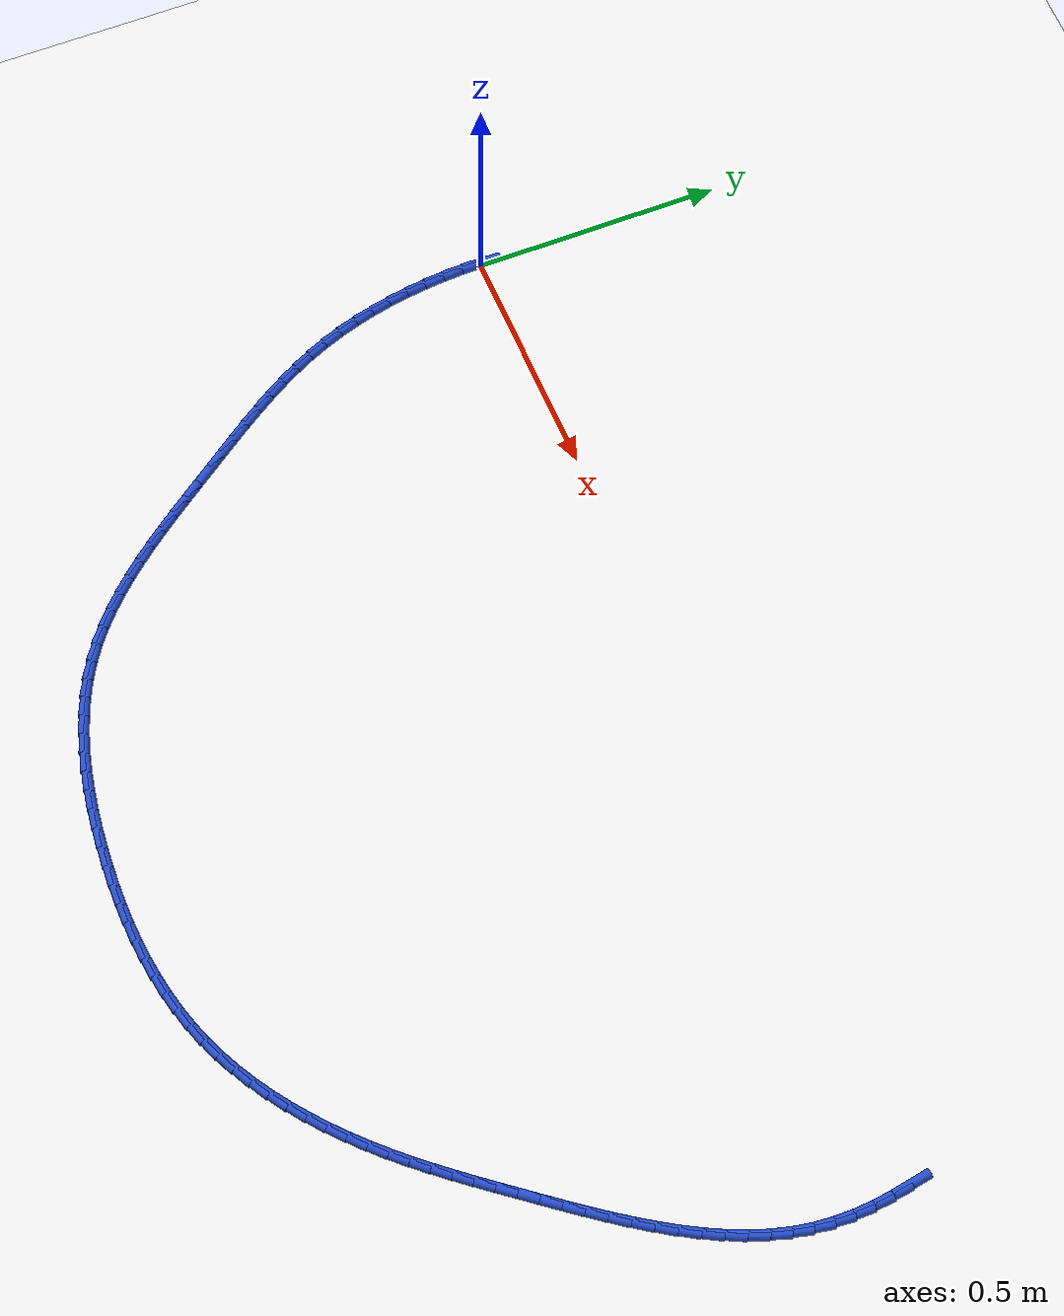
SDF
<sdf version="1.6">
 <world name="default">
  <model name="ground_plane">
   <static>1</static>
   <link name="link">
    <collision name="collision">
     <geometry><plane><normal>0 0 1</normal><size>100 100</size></plane></geometry>
     <surface><friction><ode><mu>100</mu><mu2>50</mu2></ode></friction></surface>
    </collision>
    <visual name="visual">
     <cast_shadows>0</cast_shadows>
     <geometry><plane><normal>0 0 1</normal><size>100 100</size></plane></geometry>
     <material>
      <script><uri>file://media/materials/scripts/gazebo.material</uri><name>Gazebo/WhiteGlow</name></script>
     </material>
    </visual>
   </link>
  </model>
  <model name="line">
   <link name="link_0">
    <pose>3.469446951953614e-18 0.0 0.01 0 1.57 1.557081055174507</pose>
    <collision name="collision">
     <geometry><cylinder><radius>0.01</radius><length>0.08</length></cylinder></geometry>
    </collision>
    <visual name="visual">
     <material>
      <script><name>Gazebo/Blue</name><uri>file://media/materials/scripts/gazebo.material</uri></script>
     </material>
     <geometry><cylinder><radius>0.01</radius><length>0.08</length></cylinder></geometry>
    </visual>
   </link>
   <link name="link_85">
    <pose>2.1668256963083787 -0.03859959468812169 0.01 0 1.57 -1.375232970775576</pose>
    <collision name="collision">
     <geometry><cylinder><radius>0.01</radius><length>0.08</length></cylinder></geometry>
    </collision>
    <visual name="visual">
     <material>
      <script><name>Gazebo/Blue</name><uri>file://media/materials/scripts/gazebo.material</uri></script>
     </material>
     <geometry><cylinder><radius>0.01</radius><length>0.08</length></cylinder></geometry>
    </visual>
   </link>
   <link name="link_86">
    <pose>2.1747470799791855 -0.07858735570234868 0.01 0 1.57 -1.433113222860227</pose>
    <collision name="collision">
     <geometry><cylinder><radius>0.01</radius><length>0.08</length></cylinder></geometry>
    </collision>
    <visual name="visual">
     <material>
      <script><name>Gazebo/Blue</name><uri>file://media/materials/scripts/gazebo.material</uri></script>
     </material>
     <geometry><cylinder><radius>0.01</radius><length>0.08</length></cylinder></geometry>
    </visual>
   </link>
   <link name="link_87">
    <pose>2.1802638411460196 -0.11840238840496489 0.01 0 1.57 -1.4990910510602626</pose>
    <collision name="collision">
     <geometry><cylinder><radius>0.01</radius><length>0.08</length></cylinder></geometry>
    </collision>
    <visual name="visual">
     <material>
      <script><name>Gazebo/Blue</name><uri>file://media/materials/scripts/gazebo.material</uri></script>
     </material>
     <geometry><cylinder><radius>0.01</radius><length>0.08</length></cylinder></geometry>
    </visual>
   </link>
   <link name="link_88">
    <pose>2.1831056390242765 -0.15796608399235024 0.01 0 1.57 1.5681581401401632</pose>
    <collision name="collision">
     <geometry><cylinder><radius>0.01</radius><length>0.08</length></cylinder></geometry>
    </collision>
    <visual name="visual">
     <material>
      <script><name>Gazebo/Blue</name><uri>file://media/materials/scripts/gazebo.material</uri></script>
     </material>
     <geometry><cylinder><radius>0.01</radius><length>0.08</length></cylinder></geometry>
    </visual>
   </link>
   <link name="link_89">
    <pose>2.1830021328293503 -0.197199833660885 0.01 0 1.57 1.485514067327752</pose>
    <collision name="collision">
     <geometry><cylinder><radius>0.01</radius><length>0.08</length></cylinder></geometry>
    </collision>
    <visual name="visual">
     <material>
      <script><name>Gazebo/Blue</name><uri>file://media/materials/scripts/gazebo.material</uri></script>
     </material>
     <geometry><cylinder><radius>0.01</radius><length>0.08</length></cylinder></geometry>
    </visual>
   </link>
   <link name="link_90">
    <pose>2.179682981776634 -0.23602502860694746 0.01 0 1.57 1.3962677368109608</pose>
    <collision name="collision">
     <geometry><cylinder><radius>0.01</radius><length>0.08</length></cylinder></geometry>
    </collision>
    <visual name="visual">
     <material>
      <script><name>Gazebo/Blue</name><uri>file://media/materials/scripts/gazebo.material</uri></script>
     </material>
     <geometry><cylinder><radius>0.01</radius><length>0.08</length></cylinder></geometry>
    </visual>
   </link>
   <link name="link_91">
    <pose>2.1729219801116586 -0.27436954648941725 0.01 0 1.57 1.3107190084362488</pose>
    <collision name="collision">
     <geometry><cylinder><radius>0.01</radius><length>0.08</length></cylinder></geometry>
    </collision>
    <visual name="visual">
     <material>
      <script><name>Gazebo/Blue</name><uri>file://media/materials/scripts/gazebo.material</uri></script>
     </material>
     <geometry><cylinder><radius>0.01</radius><length>0.08</length></cylinder></geometry>
    </visual>
   </link>
   <link name="link_92">
    <pose>2.1628514195876662 -0.3122139528351244 0.01 0 1.57 1.234099878756024</pose>
    <collision name="collision">
     <geometry><cylinder><radius>0.01</radius><length>0.08</length></cylinder></geometry>
    </collision>
    <visual name="visual">
     <material>
      <script><name>Gazebo/Blue</name><uri>file://media/materials/scripts/gazebo.material</uri></script>
     </material>
     <geometry><cylinder><radius>0.01</radius><length>0.08</length></cylinder></geometry>
    </visual>
   </link>
   <link name="link_93">
    <pose>2.1497778481005487 -0.34956442334791776 0.01 0 1.57 1.1665808563955318</pose>
    <collision name="collision">
     <geometry><cylinder><radius>0.01</radius><length>0.08</length></cylinder></geometry>
    </collision>
    <visual name="visual">
     <material>
      <script><name>Gazebo/Blue</name><uri>file://media/materials/scripts/gazebo.material</uri></script>
     </material>
     <geometry><cylinder><radius>0.01</radius><length>0.08</length></cylinder></geometry>
    </visual>
   </link>
   <link name="link_94">
    <pose>2.1340089722286724 -0.3864273040215603 0.01 0 1.57 1.1079042132795962</pose>
    <collision name="collision">
     <geometry><cylinder><radius>0.01</radius><length>0.08</length></cylinder></geometry>
    </collision>
    <visual name="visual">
     <material>
      <script><name>Gazebo/Blue</name><uri>file://media/materials/scripts/gazebo.material</uri></script>
     </material>
     <geometry><cylinder><radius>0.01</radius><length>0.08</length></cylinder></geometry>
    </visual>
   </link>
   <link name="link_95">
    <pose>2.115852498550408 -0.42280894084981263 0.01 0 1.57 1.0575858795050967</pose>
    <collision name="collision">
     <geometry><cylinder><radius>0.01</radius><length>0.08</length></cylinder></geometry>
    </collision>
    <visual name="visual">
     <material>
      <script><name>Gazebo/Blue</name><uri>file://media/materials/scripts/gazebo.material</uri></script>
     </material>
     <geometry><cylinder><radius>0.01</radius><length>0.08</length></cylinder></geometry>
    </visual>
   </link>
   <link name="link_96">
    <pose>2.0956161336441217 -0.4587156798264376 0.01 0 1.57 1.0150493583161702</pose>
    <collision name="collision">
     <geometry><cylinder><radius>0.01</radius><length>0.08</length></cylinder></geometry>
    </collision>
    <visual name="visual">
     <material>
      <script><name>Gazebo/Blue</name><uri>file://media/materials/scripts/gazebo.material</uri></script>
     </material>
     <geometry><cylinder><radius>0.01</radius><length>0.08</length></cylinder></geometry>
    </visual>
   </link>
   <link name="link_97">
    <pose>2.0736075840881845 -0.49415386694519725 0.01 0 1.57 0.9797180229800323</pose>
    <collision name="collision">
     <geometry><cylinder><radius>0.01</radius><length>0.08</length></cylinder></geometry>
    </collision>
    <visual name="visual">
     <material>
      <script><name>Gazebo/Blue</name><uri>file://media/materials/scripts/gazebo.material</uri></script>
     </material>
     <geometry><cylinder><radius>0.01</radius><length>0.08</length></cylinder></geometry>
    </visual>
   </link>
   <link name="link_98">
    <pose>2.0501345564609625 -0.5291298481998536 0.01 0 1.57 0.9510732070620097</pose>
    <collision name="collision">
     <geometry><cylinder><radius>0.01</radius><length>0.08</length></cylinder></geometry>
    </collision>
    <visual name="visual">
     <material>
      <script><name>Gazebo/Blue</name><uri>file://media/materials/scripts/gazebo.material</uri></script>
     </material>
     <geometry><cylinder><radius>0.01</radius><length>0.08</length></cylinder></geometry>
    </visual>
   </link>
   <link name="link_99">
    <pose>2.0255047573408245 -0.5636499695841696 0.01 0 1.57 0.9286884464479318</pose>
    <collision name="collision">
     <geometry><cylinder><radius>0.01</radius><length>0.08</length></cylinder></geometry>
    </collision>
    <visual name="visual">
     <material>
      <script><name>Gazebo/Blue</name><uri>file://media/materials/scripts/gazebo.material</uri></script>
     </material>
     <geometry><cylinder><radius>0.01</radius><length>0.08</length></cylinder></geometry>
    </visual>
   </link>
   <link name="link_100">
    <pose>2.0000258933061397 -0.5977205770919057 0.01 0 1.57 0.9122492433310646</pose>
    <collision name="collision">
     <geometry><cylinder><radius>0.01</radius><length>0.08</length></cylinder></geometry>
    </collision>
    <visual name="visual">
     <material>
      <script><name>Gazebo/Blue</name><uri>file://media/materials/scripts/gazebo.material</uri></script>
     </material>
     <geometry><cylinder><radius>0.01</radius><length>0.08</length></cylinder></geometry>
    </visual>
   </link>
   <link name="link_101">
    <pose>1.9740056709352767 -0.6313480167168251 0.01 0 1.57 0.9015655627633492</pose>
    <collision name="collision">
     <geometry><cylinder><radius>0.01</radius><length>0.08</length></cylinder></geometry>
    </collision>
    <visual name="visual">
     <material>
      <script><name>Gazebo/Blue</name><uri>file://media/materials/scripts/gazebo.material</uri></script>
     </material>
     <geometry><cylinder><radius>0.01</radius><length>0.08</length></cylinder></geometry>
    </visual>
   </link>
   <link name="link_102">
    <pose>1.9477517968066027 -0.6645386344526893 0.01 0 1.57 0.8965819489391464</pose>
    <collision name="collision">
     <geometry><cylinder><radius>0.01</radius><length>0.08</length></cylinder></geometry>
    </collision>
    <visual name="visual">
     <material>
      <script><name>Gazebo/Blue</name><uri>file://media/materials/scripts/gazebo.material</uri></script>
     </material>
     <geometry><cylinder><radius>0.01</radius><length>0.08</length></cylinder></geometry>
    </visual>
   </link>
   <link name="link_103">
    <pose>1.9215719630539094 -0.6972987749177485 0.01 0 1.57 0.8952090999457017</pose>
    <collision name="collision">
     <geometry><cylinder><radius>0.01</radius><length>0.08</length></cylinder></geometry>
    </collision>
    <visual name="visual">
     <material>
      <script><name>Gazebo/Blue</name><uri>file://media/materials/scripts/gazebo.material</uri></script>
     </material>
     <geometry><cylinder><radius>0.01</radius><length>0.08</length></cylinder></geometry>
    </visual>
   </link>
   <link name="link_104">
    <pose>1.8956664444478315 -0.7296245537078303 0.01 0 1.57 0.8900665578600006</pose>
    <collision name="collision">
     <geometry><cylinder><radius>0.01</radius><length>0.08</length></cylinder></geometry>
    </collision>
    <visual name="visual">
     <material>
      <script><name>Gazebo/Blue</name><uri>file://media/materials/scripts/gazebo.material</uri></script>
     </material>
     <geometry><cylinder><radius>0.01</radius><length>0.08</length></cylinder></geometry>
    </visual>
   </link>
   <link name="link_105">
    <pose>1.8698699134887193 -0.7614772712481899 0.01 0 1.57 0.8794714454621344</pose>
    <collision name="collision">
     <geometry><cylinder><radius>0.01</radius><length>0.08</length></cylinder></geometry>
    </collision>
    <visual name="visual">
     <material>
      <script><name>Gazebo/Blue</name><uri>file://media/materials/scripts/gazebo.material</uri></script>
     </material>
     <geometry><cylinder><radius>0.01</radius><length>0.08</length></cylinder></geometry>
    </visual>
   </link>
   <link name="link_106">
    <pose>1.843939330409043 -0.7928108276657774 0.01 0 1.57 0.8633919680097388</pose>
    <collision name="collision">
     <geometry><cylinder><radius>0.01</radius><length>0.08</length></cylinder></geometry>
    </collision>
    <visual name="visual">
     <material>
      <script><name>Gazebo/Blue</name><uri>file://media/materials/scripts/gazebo.material</uri></script>
     </material>
     <geometry><cylinder><radius>0.01</radius><length>0.08</length></cylinder></geometry>
    </visual>
   </link>
   <link name="link_107">
    <pose>1.8176316554412737 -0.8235791230875429 0.01 0 1.57 0.8419052126110977</pose>
    <collision name="collision">
     <geometry><cylinder><radius>0.01</radius><length>0.08</length></cylinder></geometry>
    </collision>
    <visual name="visual">
     <material>
      <script><name>Gazebo/Blue</name><uri>file://media/materials/scripts/gazebo.material</uri></script>
     </material>
     <geometry><cylinder><radius>0.01</radius><length>0.08</length></cylinder></geometry>
    </visual>
   </link>
   <link name="link_108">
    <pose>1.7907038488178801 -0.8537360576404357 0.01 0 1.57 0.8152109769905161</pose>
    <collision name="collision">
     <geometry><cylinder><radius>0.01</radius><length>0.08</length></cylinder></geometry>
    </collision>
    <visual name="visual">
     <material>
      <script><name>Gazebo/Blue</name><uri>file://media/materials/scripts/gazebo.material</uri></script>
     </material>
     <geometry><cylinder><radius>0.01</radius><length>0.08</length></cylinder></geometry>
    </visual>
   </link>
   <link name="link_109">
    <pose>1.7629128707713353 -0.8832355314514065 0.01 0 1.57 0.783753322488729</pose>
    <collision name="collision">
     <geometry><cylinder><radius>0.01</radius><length>0.08</length></cylinder></geometry>
    </collision>
    <visual name="visual">
     <material>
      <script><name>Gazebo/Blue</name><uri>file://media/materials/scripts/gazebo.material</uri></script>
     </material>
     <geometry><cylinder><radius>0.01</radius><length>0.08</length></cylinder></geometry>
    </visual>
   </link>
   <link name="link_110">
    <pose>1.734027382365167 -0.9120261517489678 0.01 0 1.57 0.7493283801169522</pose>
    <collision name="collision">
     <geometry><cylinder><radius>0.01</radius><length>0.08</length></cylinder></geometry>
    </collision>
    <visual name="visual">
     <material>
      <script><name>Gazebo/Blue</name><uri>file://media/materials/scripts/gazebo.material</uri></script>
     </material>
     <geometry><cylinder><radius>0.01</radius><length>0.08</length></cylinder></geometry>
    </visual>
   </link>
   <link name="link_111">
    <pose>1.7039761416295678 -0.9399841055224014 0.01 0 1.57 0.712863179380147</pose>
    <collision name="collision">
     <geometry><cylinder><radius>0.01</radius><length>0.08</length></cylinder></geometry>
    </collision>
    <visual name="visual">
     <material>
      <script><name>Gazebo/Blue</name><uri>file://media/materials/scripts/gazebo.material</uri></script>
     </material>
     <geometry><cylinder><radius>0.01</radius><length>0.08</length></cylinder></geometry>
    </visual>
   </link>
   <link name="link_112">
    <pose>1.6728039100303174 -0.9669331053341946 0.01 0 1.57 0.6740956313331415</pose>
    <collision name="collision">
     <geometry><cylinder><radius>0.01</radius><length>0.08</length></cylinder></geometry>
    </collision>
    <visual name="visual">
     <material>
      <script><name>Gazebo/Blue</name><uri>file://media/materials/scripts/gazebo.material</uri></script>
     </material>
     <geometry><cylinder><radius>0.01</radius><length>0.08</length></cylinder></geometry>
    </visual>
   </link>
   <link name="link_113">
    <pose>1.6405580432403613 -0.992695690251125 0.01 0 1.57 0.6327319312976758</pose>
    <collision name="collision">
     <geometry><cylinder><radius>0.01</radius><length>0.08</length></cylinder></geometry>
    </collision>
    <visual name="visual">
     <material>
      <script><name>Gazebo/Blue</name><uri>file://media/materials/scripts/gazebo.material</uri></script>
     </material>
     <geometry><cylinder><radius>0.01</radius><length>0.08</length></cylinder></geometry>
    </visual>
   </link>
   <link name="link_114">
    <pose>1.6072858969326451 -1.0170943993399701 0.01 0 1.57 0.5884739286379961</pose>
    <collision name="collision">
     <geometry><cylinder><radius>0.01</radius><length>0.08</length></cylinder></geometry>
    </collision>
    <visual name="visual">
     <material>
      <script><name>Gazebo/Blue</name><uri>file://media/materials/scripts/gazebo.material</uri></script>
     </material>
     <geometry><cylinder><radius>0.01</radius><length>0.08</length></cylinder></geometry>
    </visual>
   </link>
   <link name="link_115">
    <pose>1.5730348267801142 -1.0399517716675077 0.01 0 1.57 0.5410251862730446</pose>
    <collision name="collision">
     <geometry><cylinder><radius>0.01</radius><length>0.08</length></cylinder></geometry>
    </collision>
    <visual name="visual">
     <material>
      <script><name>Gazebo/Blue</name><uri>file://media/materials/scripts/gazebo.material</uri></script>
     </material>
     <geometry><cylinder><radius>0.01</radius><length>0.08</length></cylinder></geometry>
    </visual>
   </link>
   <link name="link_116">
    <pose>1.5378521884557155 -1.0610903463005152 0.01 0 1.57 0.4901011275977094</pose>
    <collision name="collision">
     <geometry><cylinder><radius>0.01</radius><length>0.08</length></cylinder></geometry>
    </collision>
    <visual name="visual">
     <material>
      <script><name>Gazebo/Blue</name><uri>file://media/materials/scripts/gazebo.material</uri></script>
     </material>
     <geometry><cylinder><radius>0.01</radius><length>0.08</length></cylinder></geometry>
    </visual>
   </link>
   <link name="link_117">
    <pose>1.5017853376323933 -1.0803326623057694 0.01 0 1.57 0.4354441938480481</pose>
    <collision name="collision">
     <geometry><cylinder><radius>0.01</radius><length>0.08</length></cylinder></geometry>
    </collision>
    <visual name="visual">
     <material>
      <script><name>Gazebo/Blue</name><uri>file://media/materials/scripts/gazebo.material</uri></script>
     </material>
     <geometry><cylinder><radius>0.01</radius><length>0.08</length></cylinder></geometry>
    </visual>
   </link>
   <link name="link_118">
    <pose>1.4648816299830938 -1.0975012587500488 0.01 0 1.57 0.37692403708028666</pose>
    <collision name="collision">
     <geometry><cylinder><radius>0.01</radius><length>0.08</length></cylinder></geometry>
    </collision>
    <visual name="visual">
     <material>
      <script><name>Gazebo/Blue</name><uri>file://media/materials/scripts/gazebo.material</uri></script>
     </material>
     <geometry><cylinder><radius>0.01</radius><length>0.08</length></cylinder></geometry>
    </visual>
   </link>
   <link name="link_119">
    <pose>1.4271886890903083 -1.112422025003693 0.01 0 1.57 0.31741267710559407</pose>
    <collision name="collision">
     <geometry><cylinder><radius>0.01</radius><length>0.08</length></cylinder></geometry>
    </collision>
    <visual name="visual">
     <material>
      <script><name>Gazebo/Blue</name><uri>file://media/materials/scripts/gazebo.material</uri></script>
     </material>
     <geometry><cylinder><radius>0.01</radius><length>0.08</length></cylinder></geometry>
    </visual>
   </link>
   <link name="link_120">
    <pose>1.3887640894245794 -1.1250452898093948 0.01 0 1.57 0.26087765961649423</pose>
    <collision name="collision">
     <geometry><cylinder><radius>0.01</radius><length>0.08</length></cylinder></geometry>
    </collision>
    <visual name="visual">
     <material>
      <script><name>Gazebo/Blue</name><uri>file://media/materials/scripts/gazebo.material</uri></script>
     </material>
     <geometry><cylinder><radius>0.01</radius><length>0.08</length></cylinder></geometry>
    </visual>
   </link>
   <link name="link_121">
    <pose>1.3496780697560489 -1.1354797534526613 0.01 0 1.57 0.2077786103918432</pose>
    <collision name="collision">
     <geometry><cylinder><radius>0.01</radius><length>0.08</length></cylinder></geometry>
    </collision>
    <visual name="visual">
     <material>
      <script><name>Gazebo/Blue</name><uri>file://media/materials/scripts/gazebo.material</uri></script>
     </material>
     <geometry><cylinder><radius>0.01</radius><length>0.08</length></cylinder></geometry>
    </visual>
   </link>
   <link name="link_122">
    <pose>1.310001689356831 -1.143844376886187 0.01 0 1.57 0.15822915548512914</pose>
    <collision name="collision">
     <geometry><cylinder><radius>0.01</radius><length>0.08</length></cylinder></geometry>
    </collision>
    <visual name="visual">
     <material>
      <script><name>Gazebo/Blue</name><uri>file://media/materials/scripts/gazebo.material</uri></script>
     </material>
     <geometry><cylinder><radius>0.01</radius><length>0.08</length></cylinder></geometry>
    </visual>
   </link>
   <link name="link_123">
    <pose>1.2698060074990405 -1.1502581210626688 0.01 0 1.57 0.11225696433266351</pose>
    <collision name="collision">
     <geometry><cylinder><radius>0.01</radius><length>0.08</length></cylinder></geometry>
    </collision>
    <visual name="visual">
     <material>
      <script><name>Gazebo/Blue</name><uri>file://media/materials/scripts/gazebo.material</uri></script>
     </material>
     <geometry><cylinder><radius>0.01</radius><length>0.08</length></cylinder></geometry>
    </visual>
   </link>
   <link name="link_124">
    <pose>1.2291620834547912 -1.1548399469348027 0.01 0 1.57 0.06982271088724111</pose>
    <collision name="collision">
     <geometry><cylinder><radius>0.01</radius><length>0.08</length></cylinder></geometry>
    </collision>
    <visual name="visual">
     <material>
      <script><name>Gazebo/Blue</name><uri>file://media/materials/scripts/gazebo.material</uri></script>
     </material>
     <geometry><cylinder><radius>0.01</radius><length>0.08</length></cylinder></geometry>
    </visual>
   </link>
   <link name="link_125">
    <pose>1.1881409764961968 -1.157708815455284 0.01 0 1.57 0.030838455384480084</pose>
    <collision name="collision">
     <geometry><cylinder><radius>0.01</radius><length>0.08</length></cylinder></geometry>
    </collision>
    <visual name="visual">
     <material>
      <script><name>Gazebo/Blue</name><uri>file://media/materials/scripts/gazebo.material</uri></script>
     </material>
     <geometry><cylinder><radius>0.01</radius><length>0.08</length></cylinder></geometry>
    </visual>
   </link>
   <link name="link_126">
    <pose>1.1468137458953716 -1.1589836875768091 0.01 0 1.57 -0.004815946217301304</pose>
    <collision name="collision">
     <geometry><cylinder><radius>0.01</radius><length>0.08</length></cylinder></geometry>
    </collision>
    <visual name="visual">
     <material>
      <script><name>Gazebo/Blue</name><uri>file://media/materials/scripts/gazebo.material</uri></script>
     </material>
     <geometry><cylinder><radius>0.01</radius><length>0.08</length></cylinder></geometry>
    </visual>
   </link>
   <link name="link_127">
    <pose>1.1052514509244307 -1.1587835242520739 0.01 0 1.57 -0.037279050224615654</pose>
    <collision name="collision">
     <geometry><cylinder><radius>0.01</radius><length>0.08</length></cylinder></geometry>
    </collision>
    <visual name="visual">
     <material>
      <script><name>Gazebo/Blue</name><uri>file://media/materials/scripts/gazebo.material</uri></script>
     </material>
     <geometry><cylinder><radius>0.01</radius><length>0.08</length></cylinder></geometry>
    </visual>
   </link>
   <link name="link_128">
    <pose>1.0635251508554882 -1.1572272864337738 0.01 0 1.57 -0.06669675733526748</pose>
    <collision name="collision">
     <geometry><cylinder><radius>0.01</radius><length>0.08</length></cylinder></geometry>
    </collision>
    <visual name="visual">
     <material>
      <script><name>Gazebo/Blue</name><uri>file://media/materials/scripts/gazebo.material</uri></script>
     </material>
     <geometry><cylinder><radius>0.01</radius><length>0.08</length></cylinder></geometry>
    </visual>
   </link>
   <link name="link_129">
    <pose>1.021705904960658 -1.1544339350746062 0.01 0 1.57 -0.0932376706233132</pose>
    <collision name="collision">
     <geometry><cylinder><radius>0.01</radius><length>0.08</length></cylinder></geometry>
    </collision>
    <visual name="visual">
     <material>
      <script><name>Gazebo/Blue</name><uri>file://media/materials/scripts/gazebo.material</uri></script>
     </material>
     <geometry><cylinder><radius>0.01</radius><length>0.08</length></cylinder></geometry>
    </visual>
   </link>
   <link name="link_130">
    <pose>0.9798650816984968 -1.150521450180276 0.01 0 1.57 -0.11904099583025274</pose>
    <collision name="collision">
     <geometry><cylinder><radius>0.01</radius><length>0.08</length></cylinder></geometry>
    </collision>
    <visual name="visual">
     <material>
      <script><name>Gazebo/Blue</name><uri>file://media/materials/scripts/gazebo.material</uri></script>
     </material>
     <geometry><cylinder><radius>0.01</radius><length>0.08</length></cylinder></geometry>
    </visual>
   </link>
   <link name="link_131">
    <pose>0.9380998191459182 -1.1455260532247822 0.01 0 1.57 -0.14775826099954362</pose>
    <collision name="collision">
     <geometry><cylinder><radius>0.01</radius><length>0.08</length></cylinder></geometry>
    </collision>
    <visual name="visual">
     <material>
      <script><name>Gazebo/Blue</name><uri>file://media/materials/scripts/gazebo.material</uri></script>
     </material>
     <geometry><cylinder><radius>0.01</radius><length>0.08</length></cylinder></geometry>
    </visual>
   </link>
   <link name="link_132">
    <pose>0.8965520169953503 -1.139341951783804 0.01 0 1.57 -0.17996632782609148</pose>
    <collision name="collision">
     <geometry><cylinder><radius>0.01</radius><length>0.08</length></cylinder></geometry>
    </collision>
    <visual name="visual">
     <material>
      <script><name>Gazebo/Blue</name><uri>file://media/materials/scripts/gazebo.material</uri></script>
     </material>
     <geometry><cylinder><radius>0.01</radius><length>0.08</length></cylinder></geometry>
    </visual>
   </link>
   <link name="link_133">
    <pose>0.8553680494531534 -1.1318491572705334 0.01 0 1.57 -0.21592289056531372</pose>
    <collision name="collision">
     <geometry><cylinder><radius>0.01</radius><length>0.08</length></cylinder></geometry>
    </collision>
    <visual name="visual">
     <material>
      <script><name>Gazebo/Blue</name><uri>file://media/materials/scripts/gazebo.material</uri></script>
     </material>
     <geometry><cylinder><radius>0.01</radius><length>0.08</length></cylinder></geometry>
    </visual>
   </link>
   <link name="link_134">
    <pose>0.8146942907256896 -1.122927681098165 0.01 0 1.57 -0.2559048293489053</pose>
    <collision name="collision">
     <geometry><cylinder><radius>0.01</radius><length>0.08</length></cylinder></geometry>
    </collision>
    <visual name="visual">
     <material>
      <script><name>Gazebo/Blue</name><uri>file://media/materials/scripts/gazebo.material</uri></script>
     </material>
     <geometry><cylinder><radius>0.01</radius><length>0.08</length></cylinder></geometry>
    </visual>
   </link>
   <link name="link_135">
    <pose>0.7746771150193192 -1.112457534679891 0.01 0 1.57 -0.3001960934113105</pose>
    <collision name="collision">
     <geometry><cylinder><radius>0.01</radius><length>0.08</length></cylinder></geometry>
    </collision>
    <visual name="visual">
     <material>
      <script><name>Gazebo/Blue</name><uri>file://media/materials/scripts/gazebo.material</uri></script>
     </material>
     <geometry><cylinder><radius>0.01</radius><length>0.08</length></cylinder></geometry>
    </visual>
   </link>
   <link name="link_136">
    <pose>0.7354628965404034 -1.1003187294289043 0.01 0 1.57 -0.34906983729762153</pose>
    <collision name="collision">
     <geometry><cylinder><radius>0.01</radius><length>0.08</length></cylinder></geometry>
    </collision>
    <visual name="visual">
     <material>
      <script><name>Gazebo/Blue</name><uri>file://media/materials/scripts/gazebo.material</uri></script>
     </material>
     <geometry><cylinder><radius>0.01</radius><length>0.08</length></cylinder></geometry>
    </visual>
   </link>
   <link name="link_137">
    <pose>0.697198009495305 -1.0863912767583992 0.01 0 1.57 -0.4027632897778284</pose>
    <collision name="collision">
     <geometry><cylinder><radius>0.01</radius><length>0.08</length></cylinder></geometry>
    </collision>
    <visual name="visual">
     <material>
      <script><name>Gazebo/Blue</name><uri>file://media/materials/scripts/gazebo.material</uri></script>
     </material>
     <geometry><cylinder><radius>0.01</radius><length>0.08</length></cylinder></geometry>
    </visual>
   </link>
   <link name="link_138">
    <pose>0.6600288280903844 -1.0705551880815676 0.01 0 1.57 -0.46144434232583953</pose>
    <collision name="collision">
     <geometry><cylinder><radius>0.01</radius><length>0.08</length></cylinder></geometry>
    </collision>
    <visual name="visual">
     <material>
      <script><name>Gazebo/Blue</name><uri>file://media/materials/scripts/gazebo.material</uri></script>
     </material>
     <geometry><cylinder><radius>0.01</radius><length>0.08</length></cylinder></geometry>
    </visual>
   </link>
   <link name="link_139">
    <pose>0.6241017265320028 -1.052690474811603 0.01 0 1.57 -0.5251701293922432</pose>
    <collision name="collision">
     <geometry><cylinder><radius>0.01</radius><length>0.08</length></cylinder></geometry>
    </collision>
    <visual name="visual">
     <material>
      <script><name>Gazebo/Blue</name><uri>file://media/materials/scripts/gazebo.material</uri></script>
     </material>
     <geometry><cylinder><radius>0.01</radius><length>0.08</length></cylinder></geometry>
    </visual>
   </link>
   <link name="link_140">
    <pose>0.5895630790265219 -1.032677148361699 0.01 0 1.57 -0.5929380923436925</pose>
    <collision name="collision">
     <geometry><cylinder><radius>0.01</radius><length>0.08</length></cylinder></geometry>
    </collision>
    <visual name="visual">
     <material>
      <script><name>Gazebo/Blue</name><uri>file://media/materials/scripts/gazebo.material</uri></script>
     </material>
     <geometry><cylinder><radius>0.01</radius><length>0.08</length></cylinder></geometry>
    </visual>
   </link>
   <link name="link_141">
    <pose>0.5565359724045059 -1.0104228465426695 0.01 0 1.57 -0.6575797932455733</pose>
    <collision name="collision">
     <geometry><cylinder><radius>0.01</radius><length>0.08</length></cylinder></geometry>
    </collision>
    <visual name="visual">
     <material>
      <script><name>Gazebo/Blue</name><uri>file://media/materials/scripts/gazebo.material</uri></script>
     </material>
     <geometry><cylinder><radius>0.01</radius><length>0.08</length></cylinder></geometry>
    </visual>
   </link>
   <link name="link_142">
    <pose>0.5249671934804416 -0.9860443562934789 0.01 0 1.57 -0.7155690514344882</pose>
    <collision name="collision">
     <geometry><cylinder><radius>0.01</radius><length>0.08</length></cylinder></geometry>
    </collision>
    <visual name="visual">
     <material>
      <script><name>Gazebo/Blue</name><uri>file://media/materials/scripts/gazebo.material</uri></script>
     </material>
     <geometry><cylinder><radius>0.01</radius><length>0.08</length></cylinder></geometry>
    </visual>
   </link>
   <link name="link_143">
    <pose>0.4947228402996537 -0.9597541876624703 0.01 0 1.57 -0.766723121995516</pose>
    <collision name="collision">
     <geometry><cylinder><radius>0.01</radius><length>0.08</length></cylinder></geometry>
    </collision>
    <visual name="visual">
     <material>
      <script><name>Gazebo/Blue</name><uri>file://media/materials/scripts/gazebo.material</uri></script>
     </material>
     <geometry><cylinder><radius>0.01</radius><length>0.08</length></cylinder></geometry>
    </visual>
   </link>
   <link name="link_144">
    <pose>0.46566859309642933 -0.9317653463576894 0.01 0 1.57 -0.8110749797926796</pose>
    <collision name="collision">
     <geometry><cylinder><radius>0.01</radius><length>0.08</length></cylinder></geometry>
    </collision>
    <visual name="visual">
     <material>
      <script><name>Gazebo/Blue</name><uri>file://media/materials/scripts/gazebo.material</uri></script>
     </material>
     <geometry><cylinder><radius>0.01</radius><length>0.08</length></cylinder></geometry>
    </visual>
   </link>
   <link name="link_145">
    <pose>0.437670132105056 -0.902290838087182 0.01 0 1.57 -0.8487844372406904</pose>
    <collision name="collision">
     <geometry><cylinder><radius>0.01</radius><length>0.08</length></cylinder></geometry>
    </collision>
    <visual name="visual">
     <material>
      <script><name>Gazebo/Blue</name><uri>file://media/materials/scripts/gazebo.material</uri></script>
     </material>
     <geometry><cylinder><radius>0.01</radius><length>0.08</length></cylinder></geometry>
    </visual>
   </link>
   <link name="link_146">
    <pose>0.410593137559822 -0.871543668558995 0.01 0 1.57 -0.880076265459703</pose>
    <collision name="collision">
     <geometry><cylinder><radius>0.01</radius><length>0.08</length></cylinder></geometry>
    </collision>
    <visual name="visual">
     <material>
      <script><name>Gazebo/Blue</name><uri>file://media/materials/scripts/gazebo.material</uri></script>
     </material>
     <geometry><cylinder><radius>0.01</radius><length>0.08</length></cylinder></geometry>
    </visual>
   </link>
   <link name="link_147">
    <pose>0.3843032896950142 -0.8397368434811733 0.01 0 1.57 -0.905192277338589</pose>
    <collision name="collision">
     <geometry><cylinder><radius>0.01</radius><length>0.08</length></cylinder></geometry>
    </collision>
    <visual name="visual">
     <material>
      <script><name>Gazebo/Blue</name><uri>file://media/materials/scripts/gazebo.material</uri></script>
     </material>
     <geometry><cylinder><radius>0.01</radius><length>0.08</length></cylinder></geometry>
    </visual>
   </link>
   <link name="link_148">
    <pose>0.35866626874492147 -0.8070833685617647 0.01 0 1.57 -0.9243566833442343</pose>
    <collision name="collision">
     <geometry><cylinder><radius>0.01</radius><length>0.08</length></cylinder></geometry>
    </collision>
    <visual name="visual">
     <material>
      <script><name>Gazebo/Blue</name><uri>file://media/materials/scripts/gazebo.material</uri></script>
     </material>
     <geometry><cylinder><radius>0.01</radius><length>0.08</length></cylinder></geometry>
    </visual>
   </link>
   <link name="link_149">
    <pose>0.33354775494383093 -0.7737962495088145 0.01 0 1.57 -0.9377523062680971</pose>
    <collision name="collision">
     <geometry><cylinder><radius>0.01</radius><length>0.08</length></cylinder></geometry>
    </collision>
    <visual name="visual">
     <material>
      <script><name>Gazebo/Blue</name><uri>file://media/materials/scripts/gazebo.material</uri></script>
     </material>
     <geometry><cylinder><radius>0.01</radius><length>0.08</length></cylinder></geometry>
    </visual>
   </link>
   <link name="link_150">
    <pose>0.3088134285260305 -0.7400884920303692 0.01 0 1.57 -0.9455048901116488</pose>
    <collision name="collision">
     <geometry><cylinder><radius>0.01</radius><length>0.08</length></cylinder></geometry>
    </collision>
    <visual name="visual">
     <material>
      <script><name>Gazebo/Blue</name><uri>file://media/materials/scripts/gazebo.material</uri></script>
     </material>
     <geometry><cylinder><radius>0.01</radius><length>0.08</length></cylinder></geometry>
    </visual>
   </link>
   <link name="link_151">
    <pose>0.2843289697258079 -0.7061731018344751 0.01 0 1.57 -0.9476732529264108</pose>
    <collision name="collision">
     <geometry><cylinder><radius>0.01</radius><length>0.08</length></cylinder></geometry>
    </collision>
    <visual name="visual">
     <material>
      <script><name>Gazebo/Blue</name><uri>file://media/materials/scripts/gazebo.material</uri></script>
     </material>
     <geometry><cylinder><radius>0.01</radius><length>0.08</length></cylinder></geometry>
    </visual>
   </link>
   <link name="link_152">
    <pose>0.25996006324304743 -0.6722630803191546 0.01 0 1.57 -0.946447094153635</pose>
    <collision name="collision">
     <geometry><cylinder><radius>0.01</radius><length>0.08</length></cylinder></geometry>
    </collision>
    <visual name="visual">
     <material>
      <script><name>Gazebo/Blue</name><uri>file://media/materials/scripts/gazebo.material</uri></script>
     </material>
     <geometry><cylinder><radius>0.01</radius><length>0.08</length></cylinder></geometry>
    </visual>
   </link>
   <link name="link_153">
    <pose>0.23563903902794772 -0.6385071054233122 0.01 0 1.57 -0.9495864144404854</pose>
    <collision name="collision">
     <geometry><cylinder><radius>0.01</radius><length>0.08</length></cylinder></geometry>
    </collision>
    <visual name="visual">
     <material>
      <script><name>Gazebo/Blue</name><uri>file://media/materials/scripts/gazebo.material</uri></script>
     </material>
     <geometry><cylinder><radius>0.01</radius><length>0.08</length></cylinder></geometry>
    </visual>
   </link>
   <link name="link_154">
    <pose>0.21153307290449883 -0.6048271907865982 0.01 0 1.57 -0.9588813436918355</pose>
    <collision name="collision">
     <geometry><cylinder><radius>0.01</radius><length>0.08</length></cylinder></geometry>
    </collision>
    <visual name="visual">
     <material>
      <script><name>Gazebo/Blue</name><uri>file://media/materials/scripts/gazebo.material</uri></script>
     </material>
     <geometry><cylinder><radius>0.01</radius><length>0.08</length></cylinder></geometry>
    </visual>
   </link>
   <link name="link_155">
    <pose>0.18786104322680325 -0.5710954487343674 0.01 0 1.57 -0.9744383181565927</pose>
    <collision name="collision">
     <geometry><cylinder><radius>0.01</radius><length>0.08</length></cylinder></geometry>
    </collision>
    <visual name="visual">
     <material>
      <script><name>Gazebo/Blue</name><uri>file://media/materials/scripts/gazebo.material</uri></script>
     </material>
     <geometry><cylinder><radius>0.01</radius><length>0.08</length></cylinder></geometry>
    </visual>
   </link>
   <link name="link_156">
    <pose>0.16484182834896427 -0.5371839915919762 0.01 0 1.57 -0.9963725038144997</pose>
    <collision name="collision">
     <geometry><cylinder><radius>0.01</radius><length>0.08</length></cylinder></geometry>
    </collision>
    <visual name="visual">
     <material>
      <script><name>Gazebo/Blue</name><uri>file://media/materials/scripts/gazebo.material</uri></script>
     </material>
     <geometry><cylinder><radius>0.01</radius><length>0.08</length></cylinder></geometry>
    </visual>
   </link>
   <link name="link_157">
    <pose>0.14269430662508503 -0.5029649316847806 0.01 0 1.57 -1.0247895055801894</pose>
    <collision name="collision">
     <geometry><cylinder><radius>0.01</radius><length>0.08</length></cylinder></geometry>
    </collision>
    <visual name="visual">
     <material>
      <script><name>Gazebo/Blue</name><uri>file://media/materials/scripts/gazebo.material</uri></script>
     </material>
     <geometry><cylinder><radius>0.01</radius><length>0.08</length></cylinder></geometry>
    </visual>
   </link>
   <link name="link_158">
    <pose>0.12163735640926844 -0.46831038133813613 0.01 0 1.57 -1.0597578250395083</pose>
    <collision name="collision">
     <geometry><cylinder><radius>0.01</radius><length>0.08</length></cylinder></geometry>
    </collision>
    <visual name="visual">
     <material>
      <script><name>Gazebo/Blue</name><uri>file://media/materials/scripts/gazebo.material</uri></script>
     </material>
     <geometry><cylinder><radius>0.01</radius><length>0.08</length></cylinder></geometry>
    </visual>
   </link>
   <link name="link_159">
    <pose>0.10188985605561843 -0.43309245287740034 0.01 0 1.57 -1.101271793435349</pose>
    <collision name="collision">
     <geometry><cylinder><radius>0.01</radius><length>0.08</length></cylinder></geometry>
    </collision>
    <visual name="visual">
     <material>
      <script><name>Gazebo/Blue</name><uri>file://media/materials/scripts/gazebo.material</uri></script>
     </material>
     <geometry><cylinder><radius>0.01</radius><length>0.08</length></cylinder></geometry>
    </visual>
   </link>
   <link name="link_160">
    <pose>0.08367068391823781 -0.3971832586279286 0.01 0 1.57 -1.1492063188892072</pose>
    <collision name="collision">
     <geometry><cylinder><radius>0.01</radius><length>0.08</length></cylinder></geometry>
    </collision>
    <visual name="visual">
     <material>
      <script><name>Gazebo/Blue</name><uri>file://media/materials/scripts/gazebo.material</uri></script>
     </material>
     <geometry><cylinder><radius>0.01</radius><length>0.08</length></cylinder></geometry>
    </visual>
   </link>
   <link name="link_161">
    <pose>0.06719871791608022 -0.3604549112775516 0.01 0 1.57 -1.2017751098664957</pose>
    <collision name="collision">
     <geometry><cylinder><radius>0.01</radius><length>0.08</length></cylinder></geometry>
    </collision>
    <visual name="visual">
     <material>
      <script><name>Gazebo/Blue</name><uri>file://media/materials/scripts/gazebo.material</uri></script>
     </material>
     <geometry><cylinder><radius>0.01</radius><length>0.08</length></cylinder></geometry>
    </visual>
   </link>
   <link name="link_162">
    <pose>0.0526439718663256 -0.3228202267459032 0.01 0 1.57 -1.253125761782037</pose>
    <collision name="collision">
     <geometry><cylinder><radius>0.01</radius><length>0.08</length></cylinder></geometry>
    </collision>
    <visual name="visual">
     <material>
      <script><name>Gazebo/Blue</name><uri>file://media/materials/scripts/gazebo.material</uri></script>
     </material>
     <geometry><cylinder><radius>0.01</radius><length>0.08</length></cylinder></geometry>
    </visual>
   </link>
   <link name="link_163">
    <pose>0.03999302240744689 -0.2843448220015501 0.01 0 1.57 -1.3019659237776722</pose>
    <collision name="collision">
     <geometry><cylinder><radius>0.01</radius><length>0.08</length></cylinder></geometry>
    </collision>
    <visual name="visual">
     <material>
      <script><name>Gazebo/Blue</name><uri>file://media/materials/scripts/gazebo.material</uri></script>
     </material>
     <geometry><cylinder><radius>0.01</radius><length>0.08</length></cylinder></geometry>
    </visual>
   </link>
   <link name="link_164">
    <pose>0.029189409054446586 -0.2451301634393106 0.01 0 1.57 -1.3483850118395182</pose>
    <collision name="collision">
     <geometry><cylinder><radius>0.01</radius><length>0.08</length></cylinder></geometry>
    </collision>
    <visual name="visual">
     <material>
      <script><name>Gazebo/Blue</name><uri>file://media/materials/scripts/gazebo.material</uri></script>
     </material>
     <geometry><cylinder><radius>0.01</radius><length>0.08</length></cylinder></geometry>
    </visual>
   </link>
   <link name="link_165">
    <pose>0.0201766713223265 -0.2052777174540013 0.01 0 1.57 -1.3925032743958654</pose>
    <collision name="collision">
     <geometry><cylinder><radius>0.01</radius><length>0.08</length></cylinder></geometry>
    </collision>
    <visual name="visual">
     <material>
      <script><name>Gazebo/Blue</name><uri>file://media/materials/scripts/gazebo.material</uri></script>
     </material>
     <geometry><cylinder><radius>0.01</radius><length>0.08</length></cylinder></geometry>
    </visual>
   </link>
   <link name="link_166">
    <pose>0.012898348726088629 -0.164888950440439 0.01 0 1.57 -1.43446282752909</pose>
    <collision name="collision">
     <geometry><cylinder><radius>0.01</radius><length>0.08</length></cylinder></geometry>
    </collision>
    <visual name="visual">
     <material>
      <script><name>Gazebo/Blue</name><uri>file://media/materials/scripts/gazebo.material</uri></script>
     </material>
     <geometry><cylinder><radius>0.01</radius><length>0.08</length></cylinder></geometry>
    </visual>
   </link>
   <link name="link_167">
    <pose>0.007297980780735005 -0.12406532879344076 0.01 0 1.57 -1.4744203479384779</pose>
    <collision name="collision">
     <geometry><cylinder><radius>0.01</radius><length>0.08</length></cylinder></geometry>
    </collision>
    <visual name="visual">
     <material>
      <script><name>Gazebo/Blue</name><uri>file://media/materials/scripts/gazebo.material</uri></script>
     </material>
     <geometry><cylinder><radius>0.01</radius><length>0.08</length></cylinder></geometry>
    </visual>
   </link>
   <link name="link_168">
    <pose>0.003319107001267613 -0.08290831890782284 0.01 0 1.57 -1.5125414065736131</pose>
    <collision name="collision">
     <geometry><cylinder><radius>0.01</radius><length>0.08</length></cylinder></geometry>
    </collision>
    <visual name="visual">
     <material>
      <script><name>Gazebo/Blue</name><uri>file://media/materials/scripts/gazebo.material</uri></script>
     </material>
     <geometry><cylinder><radius>0.01</radius><length>0.08</length></cylinder></geometry>
    </visual>
   </link>
   <link name="link_169">
    <pose>0.0009052669026886262 -0.04151938717840376 0.01 0 1.57 -1.5489963062975223</pose>
    <collision name="collision">
     <geometry><cylinder><radius>0.01</radius><length>0.08</length></cylinder></geometry>
    </collision>
    <visual name="visual">
     <material>
      <script><name>Gazebo/Blue</name><uri>file://media/materials/scripts/gazebo.material</uri></script>
     </material>
     <geometry><cylinder><radius>0.01</radius><length>0.08</length></cylinder></geometry>
    </visual>
   </link>
  </model>
 </world>
</sdf>
